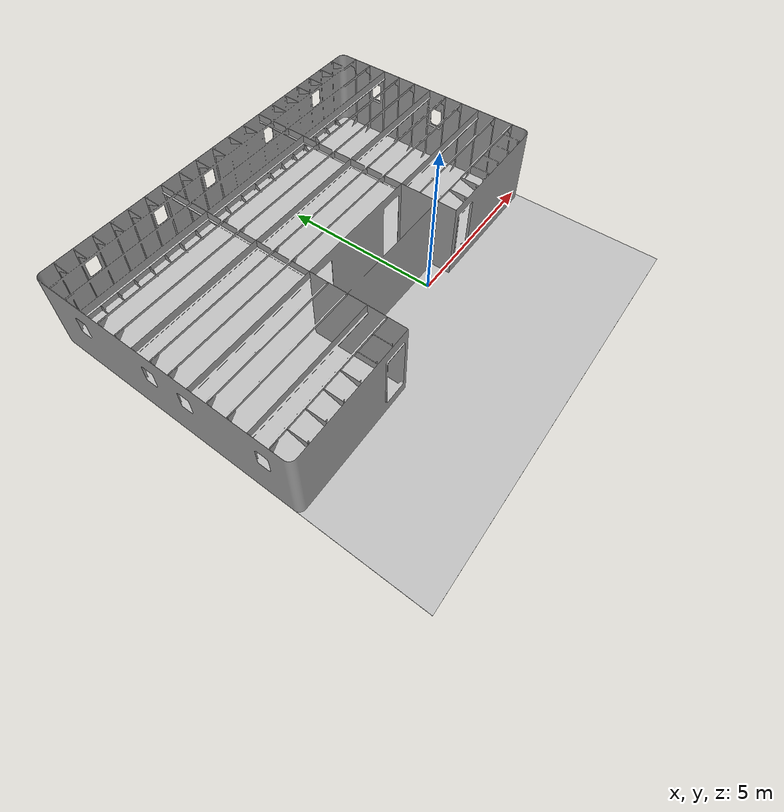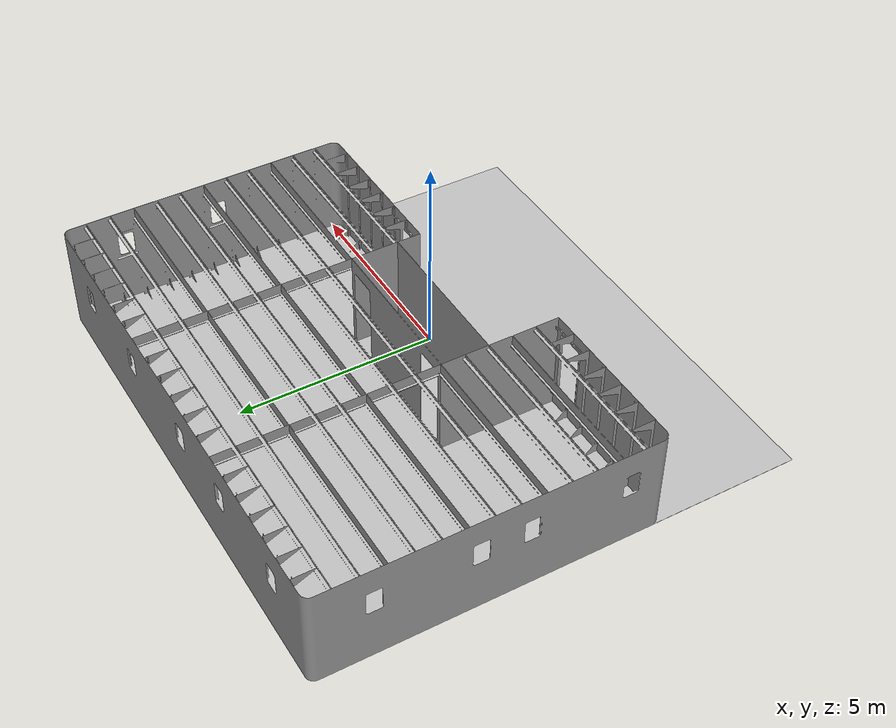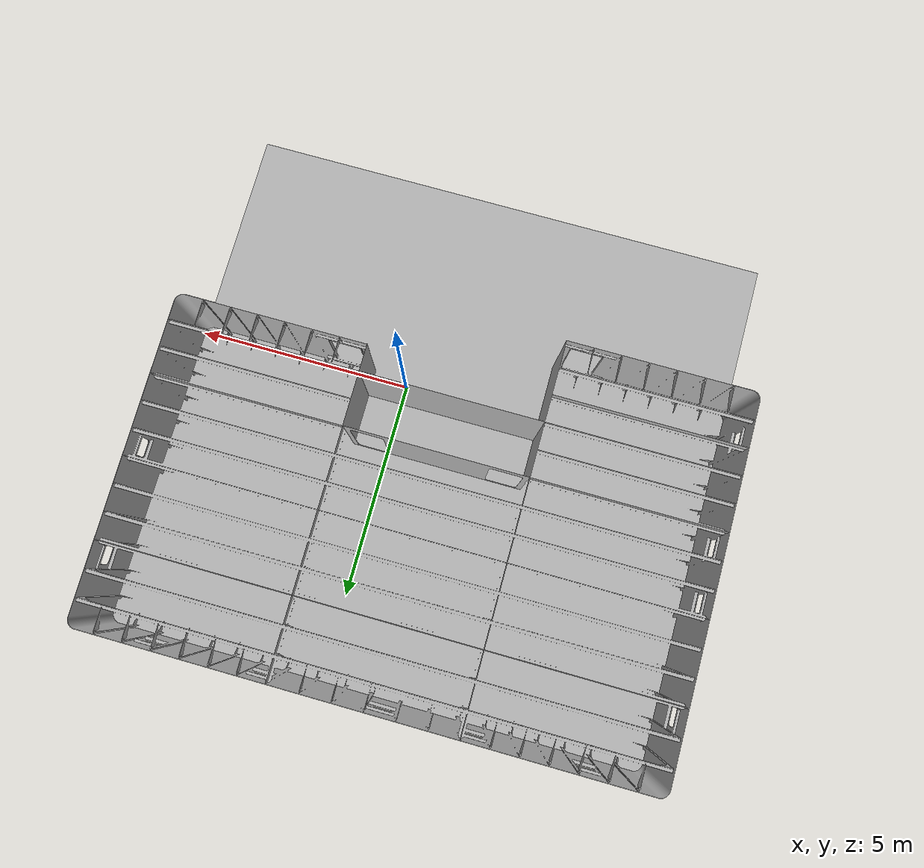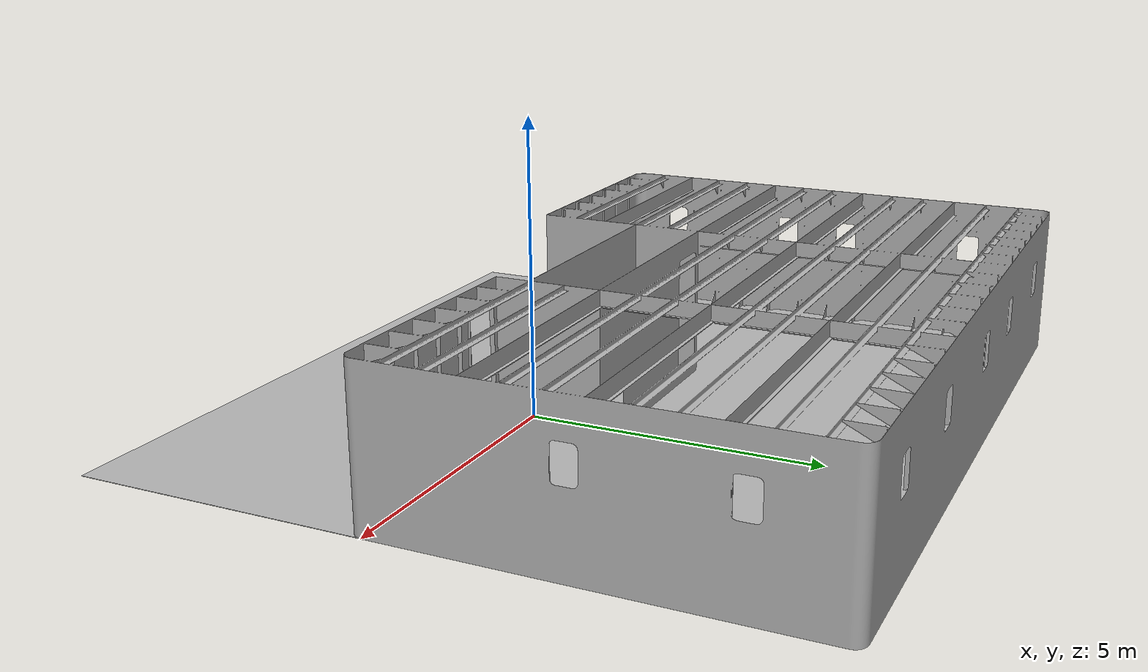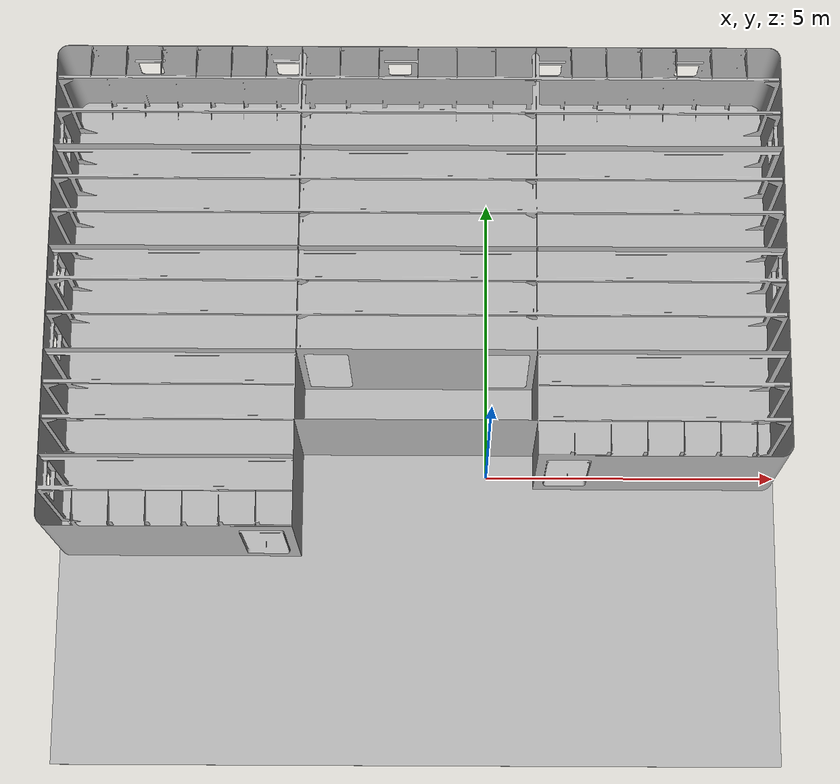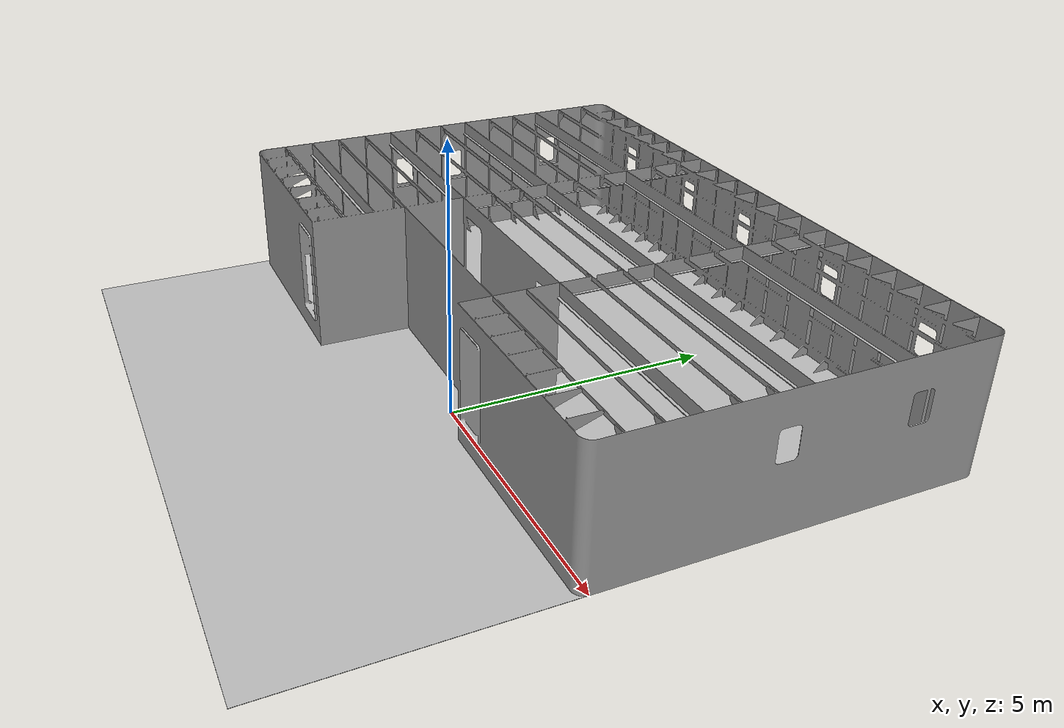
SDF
<?xml version="1.0" ?>
<sdf version="1.3">
  <world name="default">
    <scene>
      <ambient>0.5 0.5 0.5 1</ambient>
      <background>0.5 0.5 0.5 1</background>
      <shadows>false</shadows>
    </scene>
    <physics type="ode">
      <gravity>0 0 -9.81</gravity>
      <ode>
        <solver>
          <type>quick</type>
	  <dt>0.001</dt>
          <iters>10</iters>
          <sor>1.3</sor>
        </solver>
        <constraints>
          <cfm>0.0</cfm>
          <erp>0.2</erp>
          <contact_max_correcting_vel>10</contact_max_correcting_vel>
          <contact_surface_layer>0.001</contact_surface_layer>
        </constraints>
      </ode>
    </physics>
    <light type="directional" name="directional_light_1">
      <pose>0 20 100 0.1 0.1 0</pose>
      <diffuse>0.2 0.2 0.2 1</diffuse>
      <specular>1 1 1 1</specular>
      <attenuation>
        <range>300</range>
      </attenuation>
      <direction>0.1 0.1 -1</direction>
      <cast_shadows>false</cast_shadows>
    </light>
    <model name="jvalinhas">
      <link name="floor_link">
        <pose>0 0 0 0 0 0</pose>
        <collision name="floor_collision">
          <geometry>
            <mesh>
              <uri>file://jvalinhas.dae</uri>
            </mesh>
          </geometry>
        </collision>
        <visual name="jvalinhas">
          <geometry>
            <mesh>
              <uri>file://jvalinhas.dae</uri>
            </mesh>
          </geometry>
	  <material>
	    <script>
	      <uri>file://Media/materials/scripts/carlos.material</uri>
	      <name>Carlos/RustySteel</name>
	    </script>
	  </material>
          <cast_shadows>true</cast_shadows>
        </visual>
      </link>
      <static>true</static>
    </model>
  </world>
</sdf>
